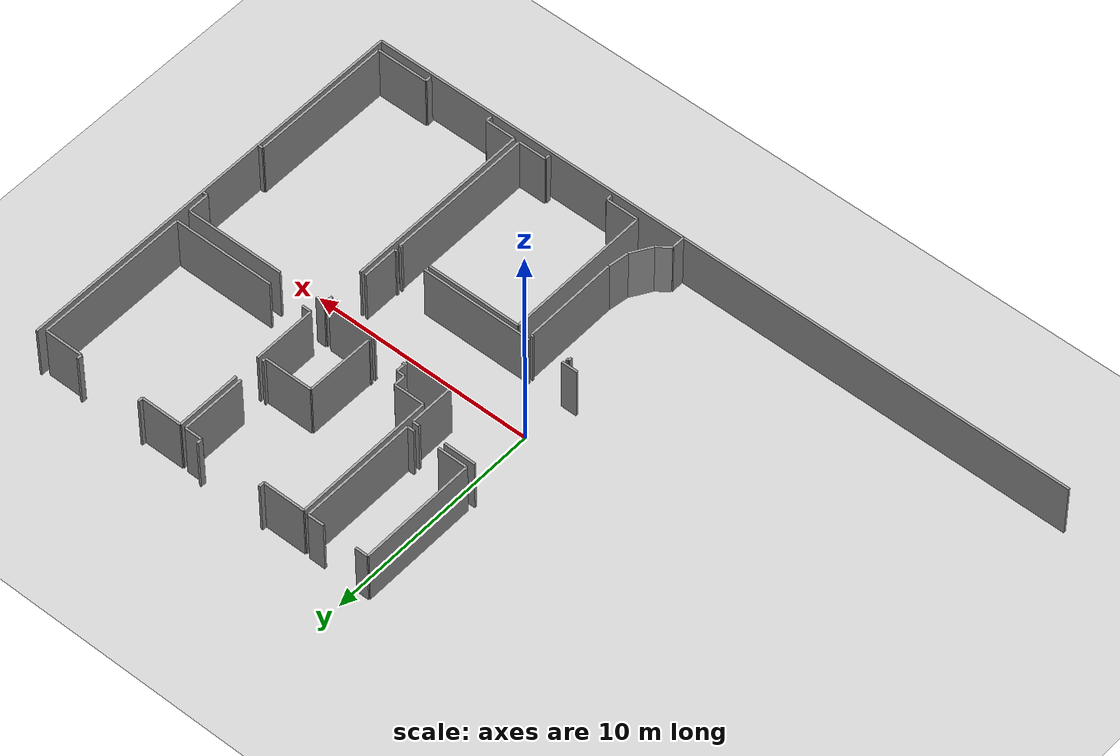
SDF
<sdf version="1.6">
 <world name="default">
  <model name="ground_plane">
   <static>1</static>
   <link name="link">
    <collision name="collision">
     <geometry><plane><normal>0 0 1</normal><size>100 100</size></plane></geometry>
     <surface><friction><ode><mu>100</mu><mu2>50</mu2></ode></friction></surface>
    </collision>
    <visual name="visual">
     <cast_shadows>0</cast_shadows>
     <geometry><plane><normal>0 0 1</normal><size>100 100</size></plane></geometry>
     <material>
      <script><uri>file://media/materials/scripts/gazebo.material</uri><name>Gazebo/Grey</name></script>
     </material>
    </visual>
   </link>
  </model>
  <model name="0510034861_A-40">
   <static>1</static>
   <link name="Wall_67">
    <collision name="Wall_67_Collision">
     <geometry><box><size>0.157635217891 0.1 2.5</size></box></geometry>
     <pose>0.0788176089454 0 1.25 0 0 0</pose>
    </collision>
    <visual name="Wall_67_Visual">
     <pose>0.0788176089454 0 1.25 0 0 0</pose>
     <geometry><box><size>0.157635217891 0.1 2.5</size></box></geometry>
     <material>
      <script><uri>file://media/materials/scripts/gazebo.material</uri><name>Gazebo/Grey</name></script>
      <ambient>1 1 1 1</ambient>
     </material>
    </visual>
    <pose>17.2040690701 -11.6845518756 0 0 0 1.57079632679</pose>
   </link>
   <link name="Wall_68">
    <collision name="Wall_68_Collision">
     <geometry><box><size>0.107882395497 0.1 2.5</size></box></geometry>
     <pose>0.0539411977484 0 1.25 0 0 0</pose>
    </collision>
    <visual name="Wall_68_Visual">
     <pose>0.0539411977484 0 1.25 0 0 0</pose>
     <geometry><box><size>0.107882395497 0.1 2.5</size></box></geometry>
     <material>
      <script><uri>file://media/materials/scripts/gazebo.material</uri><name>Gazebo/Grey</name></script>
      <ambient>1 1 1 1</ambient>
     </material>
    </visual>
    <pose>17.2040690701 -11.5269166577 0 0 0 0.0</pose>
   </link>
   <link name="Wall_69">
    <collision name="Wall_69_Collision">
     <geometry><box><size>0.116766828067 0.1 2.5</size></box></geometry>
     <pose>0.0583834140336 0 1.25 0 0 0</pose>
    </collision>
    <visual name="Wall_69_Visual">
     <pose>0.0583834140336 0 1.25 0 0 0</pose>
     <geometry><box><size>0.116766828067 0.1 2.5</size></box></geometry>
     <material>
      <script><uri>file://media/materials/scripts/gazebo.material</uri><name>Gazebo/Grey</name></script>
      <ambient>1 1 1 1</ambient>
     </material>
    </visual>
    <pose>18.877261564 -11.5269166577 0 0 0 0.0</pose>
   </link>
   <link name="Wall_70">
    <collision name="Wall_70_Collision">
     <geometry><box><size>4.31377277429 0.1 2.5</size></box></geometry>
     <pose>2.15688638715 0 1.25 0 0 0</pose>
    </collision>
    <visual name="Wall_70_Visual">
     <pose>2.15688638715 0 1.25 0 0 0</pose>
     <geometry><box><size>4.31377277429 0.1 2.5</size></box></geometry>
     <material>
      <script><uri>file://media/materials/scripts/gazebo.material</uri><name>Gazebo/Grey</name></script>
      <ambient>1 1 1 1</ambient>
     </material>
    </visual>
    <pose>18.9940283921 -11.5269166577 0 0 0 -1.57079632679</pose>
   </link>
   <link name="Wall_71">
    <collision name="Wall_71_Collision">
     <geometry><box><size>0.931246392023 0.1 2.5</size></box></geometry>
     <pose>0.465623196012 0 1.25 0 0 0</pose>
    </collision>
    <visual name="Wall_71_Visual">
     <pose>0.465623196012 0 1.25 0 0 0</pose>
     <geometry><box><size>0.931246392023 0.1 2.5</size></box></geometry>
     <material>
      <script><uri>file://media/materials/scripts/gazebo.material</uri><name>Gazebo/Grey</name></script>
      <ambient>1 1 1 1</ambient>
     </material>
    </visual>
    <pose>18.9940283921 -15.840689432 0 0 0 -1.71508341578</pose>
   </link>
   <link name="Wall_72">
    <collision name="Wall_72_Collision">
     <geometry><box><size>1.0292309526 0.1 2.5</size></box></geometry>
     <pose>0.514615476301 0 1.25 0 0 0</pose>
    </collision>
    <visual name="Wall_72_Visual">
     <pose>0.514615476301 0 1.25 0 0 0</pose>
     <geometry><box><size>1.0292309526 0.1 2.5</size></box></geometry>
     <material>
      <script><uri>file://media/materials/scripts/gazebo.material</uri><name>Gazebo/Grey</name></script>
      <ambient>1 1 1 1</ambient>
     </material>
    </visual>
    <pose>18.8601273012 -16.7622589304 0 0 0 -2.1196964731</pose>
   </link>
   <link name="Wall_73">
    <collision name="Wall_73_Collision">
     <geometry><box><size>0.661866314388 0.1 2.5</size></box></geometry>
     <pose>0.330933157194 0 1.25 0 0 0</pose>
    </collision>
    <visual name="Wall_73_Visual">
     <pose>0.330933157194 0 1.25 0 0 0</pose>
     <geometry><box><size>0.661866314388 0.1 2.5</size></box></geometry>
     <material>
      <script><uri>file://media/materials/scripts/gazebo.material</uri><name>Gazebo/Grey</name></script>
      <ambient>1 1 1 1</ambient>
     </material>
    </visual>
    <pose>18.3231268126 -17.6402947093 0 0 0 -2.48044857317</pose>
   </link>
   <link name="Wall_74">
    <collision name="Wall_74_Collision">
     <geometry><box><size>0.608211821842 0.1 2.5</size></box></geometry>
     <pose>0.304105910921 0 1.25 0 0 0</pose>
    </collision>
    <visual name="Wall_74_Visual">
     <pose>0.304105910921 0 1.25 0 0 0</pose>
     <geometry><box><size>0.608211821842 0.1 2.5</size></box></geometry>
     <material>
      <script><uri>file://media/materials/scripts/gazebo.material</uri><name>Gazebo/Grey</name></script>
      <ambient>1 1 1 1</ambient>
     </material>
    </visual>
    <pose>17.8007221774 -18.0466940392 0 0 0 -1.57622198307</pose>
   </link>
   <link name="Wall_75">
    <collision name="Wall_75_Collision">
     <geometry><box><size>1.27085461895 0.1 2.5</size></box></geometry>
     <pose>0.635427309477 0 1.25 0 0 0</pose>
    </collision>
    <visual name="Wall_75_Visual">
     <pose>0.635427309477 0 1.25 0 0 0</pose>
     <geometry><box><size>1.27085461895 0.1 2.5</size></box></geometry>
     <material>
      <script><uri>file://media/materials/scripts/gazebo.material</uri><name>Gazebo/Grey</name></script>
      <ambient>1 1 1 1</ambient>
     </material>
    </visual>
    <pose>25.3839661376 -18.2393593055 0 0 0 3.14159265359</pose>
   </link>
   <link name="Wall_76">
    <collision name="Wall_76_Collision">
     <geometry><box><size>0.237341270093 0.1 2.5</size></box></geometry>
     <pose>0.118670635047 0 1.25 0 0 0</pose>
    </collision>
    <visual name="Wall_76_Visual">
     <pose>0.118670635047 0 1.25 0 0 0</pose>
     <geometry><box><size>0.237341270093 0.1 2.5</size></box></geometry>
     <material>
      <script><uri>file://media/materials/scripts/gazebo.material</uri><name>Gazebo/Grey</name></script>
      <ambient>1 1 1 1</ambient>
     </material>
    </visual>
    <pose>24.1131115187 -18.2393593055 0 0 0 -1.57079632679</pose>
   </link>
   <link name="Wall_77">
    <collision name="Wall_77_Collision">
     <geometry><box><size>0.246098782198 0.1 2.5</size></box></geometry>
     <pose>0.123049391099 0 1.25 0 0 0</pose>
    </collision>
    <visual name="Wall_77_Visual">
     <pose>0.123049391099 0 1.25 0 0 0</pose>
     <geometry><box><size>0.246098782198 0.1 2.5</size></box></geometry>
     <material>
      <script><uri>file://media/materials/scripts/gazebo.material</uri><name>Gazebo/Grey</name></script>
      <ambient>1 1 1 1</ambient>
     </material>
    </visual>
    <pose>21.1157578104 -18.4767005756 0 0 0 1.57079632679</pose>
   </link>
   <link name="Wall_78">
    <collision name="Wall_78_Collision">
     <geometry><box><size>1.47024666992 0.1 2.5</size></box></geometry>
     <pose>0.735123334962 0 1.25 0 0 0</pose>
    </collision>
    <visual name="Wall_78_Visual">
     <pose>0.735123334962 0 1.25 0 0 0</pose>
     <geometry><box><size>1.47024666992 0.1 2.5</size></box></geometry>
     <material>
      <script><uri>file://media/materials/scripts/gazebo.material</uri><name>Gazebo/Grey</name></script>
      <ambient>1 1 1 1</ambient>
     </material>
    </visual>
    <pose>21.1157578104 -18.2306017934 0 0 0 3.14159265359</pose>
   </link>
   <link name="Wall_79">
    <collision name="Wall_79_Collision">
     <geometry><box><size>6.66383210961 0.1 2.5</size></box></geometry>
     <pose>3.3319160548 0 1.25 0 0 0</pose>
    </collision>
    <visual name="Wall_79_Visual">
     <pose>3.3319160548 0 1.25 0 0 0</pose>
     <geometry><box><size>6.66383210961 0.1 2.5</size></box></geometry>
     <material>
      <script><uri>file://media/materials/scripts/gazebo.material</uri><name>Gazebo/Grey</name></script>
      <ambient>1 1 1 1</ambient>
     </material>
    </visual>
    <pose>19.6455111404 -18.2306017934 0 0 0 1.57079632679</pose>
   </link>
   <link name="Wall_80">
    <collision name="Wall_80_Collision">
     <geometry><box><size>4.28420030588 0.1 2.5</size></box></geometry>
     <pose>2.14210015294 0 1.25 0 0 0</pose>
    </collision>
    <visual name="Wall_80_Visual">
     <pose>2.14210015294 0 1.25 0 0 0</pose>
     <geometry><box><size>4.28420030588 0.1 2.5</size></box></geometry>
     <material>
      <script><uri>file://media/materials/scripts/gazebo.material</uri><name>Gazebo/Grey</name></script>
      <ambient>1 1 1 1</ambient>
     </material>
    </visual>
    <pose>19.6455111404 -11.5667696838 0 0 0 0.0</pose>
   </link>
   <link name="Wall_81">
    <collision name="Wall_81_Collision">
     <geometry><box><size>0.113593816435 0.1 2.5</size></box></geometry>
     <pose>0.0567969082175 0 1.25 0 0 0</pose>
    </collision>
    <visual name="Wall_81_Visual">
     <pose>0.0567969082175 0 1.25 0 0 0</pose>
     <geometry><box><size>0.113593816435 0.1 2.5</size></box></geometry>
     <material>
      <script><uri>file://media/materials/scripts/gazebo.material</uri><name>Gazebo/Grey</name></script>
      <ambient>1 1 1 1</ambient>
     </material>
    </visual>
    <pose>25.2741799351 -11.5667696838 0 0 0 0.0</pose>
   </link>
   <link name="Wall_82">
    <collision name="Wall_82_Collision">
     <geometry><box><size>6.67259070809 0.1 2.5</size></box></geometry>
     <pose>3.33629535405 0 1.25 0 0 0</pose>
    </collision>
    <visual name="Wall_82_Visual">
     <pose>3.33629535405 0 1.25 0 0 0</pose>
     <geometry><box><size>6.67259070809 0.1 2.5</size></box></geometry>
     <material>
      <script><uri>file://media/materials/scripts/gazebo.material</uri><name>Gazebo/Grey</name></script>
      <ambient>1 1 1 1</ambient>
     </material>
    </visual>
    <pose>25.3877737516 -11.5667696838 0 0 0 -1.57136696185</pose>
   </link>
   <link name="Wall_83">
    <collision name="Wall_83_Collision">
     <geometry><box><size>2.37049353023 0.1 2.5</size></box></geometry>
     <pose>1.18524676511 0 1.25 0 0 0</pose>
    </collision>
    <visual name="Wall_83_Visual">
     <pose>1.18524676511 0 1.25 0 0 0</pose>
     <geometry><box><size>2.37049353023 0.1 2.5</size></box></geometry>
     <material>
      <script><uri>file://media/materials/scripts/gazebo.material</uri><name>Gazebo/Grey</name></script>
      <ambient>1 1 1 1</ambient>
     </material>
    </visual>
    <pose>32.3898489012 -18.2393593055 0 0 0 3.14159265359</pose>
   </link>
   <link name="Wall_84">
    <collision name="Wall_84_Collision">
     <geometry><box><size>0.264502249665 0.1 2.5</size></box></geometry>
     <pose>0.132251124833 0 1.25 0 0 0</pose>
    </collision>
    <visual name="Wall_84_Visual">
     <pose>0.132251124833 0 1.25 0 0 0</pose>
     <geometry><box><size>0.264502249665 0.1 2.5</size></box></geometry>
     <material>
      <script><uri>file://media/materials/scripts/gazebo.material</uri><name>Gazebo/Grey</name></script>
      <ambient>1 1 1 1</ambient>
     </material>
    </visual>
    <pose>30.019355371 -18.2393593055 0 0 0 -1.57079632679</pose>
   </link>
   <link name="Wall_85">
    <collision name="Wall_85_Collision">
     <geometry><box><size>0.259171590123 0.1 2.5</size></box></geometry>
     <pose>0.129585795062 0 1.25 0 0 0</pose>
    </collision>
    <visual name="Wall_85_Visual">
     <pose>0.129585795062 0 1.25 0 0 0</pose>
     <geometry><box><size>0.259171590123 0.1 2.5</size></box></geometry>
     <material>
      <script><uri>file://media/materials/scripts/gazebo.material</uri><name>Gazebo/Grey</name></script>
      <ambient>1 1 1 1</ambient>
     </material>
    </visual>
    <pose>27.0037251157 -18.5038615552 0 0 0 1.57079632679</pose>
   </link>
   <link name="Wall_86">
    <collision name="Wall_86_Collision">
     <geometry><box><size>1.36629880885 0.1 2.5</size></box></geometry>
     <pose>0.683149404426 0 1.25 0 0 0</pose>
    </collision>
    <visual name="Wall_86_Visual">
     <pose>0.683149404426 0 1.25 0 0 0</pose>
     <geometry><box><size>1.36629880885 0.1 2.5</size></box></geometry>
     <material>
      <script><uri>file://media/materials/scripts/gazebo.material</uri><name>Gazebo/Grey</name></script>
      <ambient>1 1 1 1</ambient>
     </material>
    </visual>
    <pose>27.0037251157 -18.244689965 0 0 0 3.14159265359</pose>
   </link>
   <link name="Wall_87">
    <collision name="Wall_87_Collision">
     <geometry><box><size>8.52867450612 0.1 2.5</size></box></geometry>
     <pose>4.26433725306 0 1.25 0 0 0</pose>
    </collision>
    <visual name="Wall_87_Visual">
     <pose>4.26433725306 0 1.25 0 0 0</pose>
     <geometry><box><size>8.52867450612 0.1 2.5</size></box></geometry>
     <material>
      <script><uri>file://media/materials/scripts/gazebo.material</uri><name>Gazebo/Grey</name></script>
      <ambient>1 1 1 1</ambient>
     </material>
    </visual>
    <pose>25.6374263068 -18.244689965 0 0 0 1.57079632679</pose>
   </link>
   <link name="Wall_88">
    <collision name="Wall_88_Collision">
     <geometry><box><size>0.385203612156 0.1 2.5</size></box></geometry>
     <pose>0.192601806078 0 1.25 0 0 0</pose>
    </collision>
    <visual name="Wall_88_Visual">
     <pose>0.192601806078 0 1.25 0 0 0</pose>
     <geometry><box><size>0.385203612156 0.1 2.5</size></box></geometry>
     <material>
      <script><uri>file://media/materials/scripts/gazebo.material</uri><name>Gazebo/Grey</name></script>
      <ambient>1 1 1 1</ambient>
     </material>
    </visual>
    <pose>25.6374263068 -8.17215491912 0 0 0 1.57079632679</pose>
   </link>
   <link name="Wall_89">
    <collision name="Wall_89_Collision">
     <geometry><box><size>0.418202933132 0.1 2.5</size></box></geometry>
     <pose>0.209101466566 0 1.25 0 0 0</pose>
    </collision>
    <visual name="Wall_89_Visual">
     <pose>0.209101466566 0 1.25 0 0 0</pose>
     <geometry><box><size>0.418202933132 0.1 2.5</size></box></geometry>
     <material>
      <script><uri>file://media/materials/scripts/gazebo.material</uri><name>Gazebo/Grey</name></script>
      <ambient>1 1 1 1</ambient>
     </material>
    </visual>
    <pose>25.6374263068 -7.78695130696 0 0 0 0.0</pose>
   </link>
   <link name="Wall_90">
    <collision name="Wall_90_Collision">
     <geometry><box><size>4.53296441785 0.1 2.5</size></box></geometry>
     <pose>2.26648220892 0 1.25 0 0 0</pose>
    </collision>
    <visual name="Wall_90_Visual">
     <pose>2.26648220892 0 1.25 0 0 0</pose>
     <geometry><box><size>4.53296441785 0.1 2.5</size></box></geometry>
     <material>
      <script><uri>file://media/materials/scripts/gazebo.material</uri><name>Gazebo/Grey</name></script>
      <ambient>1 1 1 1</ambient>
     </material>
    </visual>
    <pose>27.8316273107 -7.78695130696 0 0 0 0.0</pose>
   </link>
   <link name="Wall_91">
    <collision name="Wall_91_Collision">
     <geometry><box><size>0.984902810654 0.1 2.5</size></box></geometry>
     <pose>0.492451405327 0 1.25 0 0 0</pose>
    </collision>
    <visual name="Wall_91_Visual">
     <pose>0.492451405327 0 1.25 0 0 0</pose>
     <geometry><box><size>0.984902810654 0.1 2.5</size></box></geometry>
     <material>
      <script><uri>file://media/materials/scripts/gazebo.material</uri><name>Gazebo/Grey</name></script>
      <ambient>1 1 1 1</ambient>
     </material>
    </visual>
    <pose>32.3645917286 -7.78695130696 0 0 0 -1.57079632679</pose>
   </link>
   <link name="Wall_92">
    <collision name="Wall_92_Collision">
     <geometry><box><size>0.257394703609 0.1 2.5</size></box></geometry>
     <pose>0.128697351804 0 1.25 0 0 0</pose>
    </collision>
    <visual name="Wall_92_Visual">
     <pose>0.128697351804 0 1.25 0 0 0</pose>
     <geometry><box><size>0.257394703609 0.1 2.5</size></box></geometry>
     <material>
      <script><uri>file://media/materials/scripts/gazebo.material</uri><name>Gazebo/Grey</name></script>
      <ambient>1 1 1 1</ambient>
     </material>
    </visual>
    <pose>32.3645917286 -8.77185411762 0 0 0 0.0</pose>
   </link>
   <link name="Wall_93">
    <collision name="Wall_93_Collision">
     <geometry><box><size>0.236198985905 0.1 2.5</size></box></geometry>
     <pose>0.118099492953 0 1.25 0 0 0</pose>
    </collision>
    <visual name="Wall_93_Visual">
     <pose>0.118099492953 0 1.25 0 0 0</pose>
     <geometry><box><size>0.236198985905 0.1 2.5</size></box></geometry>
     <material>
      <script><uri>file://media/materials/scripts/gazebo.material</uri><name>Gazebo/Grey</name></script>
      <ambient>1 1 1 1</ambient>
     </material>
    </visual>
    <pose>32.6219864322 -11.8005571808 0 0 0 3.14159265359</pose>
   </link>
   <link name="Wall_94">
    <collision name="Wall_94_Collision">
     <geometry><box><size>6.43880340559 0.1 2.5</size></box></geometry>
     <pose>3.21940170279 0 1.25 0 0 0</pose>
    </collision>
    <visual name="Wall_94_Visual">
     <pose>3.21940170279 0 1.25 0 0 0</pose>
     <geometry><box><size>6.43880340559 0.1 2.5</size></box></geometry>
     <material>
      <script><uri>file://media/materials/scripts/gazebo.material</uri><name>Gazebo/Grey</name></script>
      <ambient>1 1 1 1</ambient>
     </material>
    </visual>
    <pose>32.3857874463 -11.8005571808 0 0 0 -1.57016554885</pose>
   </link>
   <link name="Wall_95">
    <collision name="Wall_95_Collision">
     <geometry><box><size>4.62320486867 0.1 2.5</size></box></geometry>
     <pose>2.31160243433 0 1.25 0 0 0</pose>
    </collision>
    <visual name="Wall_95_Visual">
     <pose>2.31160243433 0 1.25 0 0 0</pose>
     <geometry><box><size>4.62320486867 0.1 2.5</size></box></geometry>
     <material>
      <script><uri>file://media/materials/scripts/gazebo.material</uri><name>Gazebo/Grey</name></script>
      <ambient>1 1 1 1</ambient>
     </material>
    </visual>
    <pose>32.363068683 -7.14562219585 0 0 0 3.14159265359</pose>
   </link>
   <link name="Wall_96">
    <collision name="Wall_96_Collision">
     <geometry><box><size>0.417314489875 0.1 2.5</size></box></geometry>
     <pose>0.208657244937 0 1.25 0 0 0</pose>
    </collision>
    <visual name="Wall_96_Visual">
     <pose>0.208657244937 0 1.25 0 0 0</pose>
     <geometry><box><size>0.417314489875 0.1 2.5</size></box></geometry>
     <material>
      <script><uri>file://media/materials/scripts/gazebo.material</uri><name>Gazebo/Grey</name></script>
      <ambient>1 1 1 1</ambient>
     </material>
    </visual>
    <pose>26.1626231922 -7.14562219585 0 0 0 3.14159265359</pose>
   </link>
   <link name="Wall_97">
    <collision name="Wall_97_Collision">
     <geometry><box><size>2.84568375228 0.1 2.5</size></box></geometry>
     <pose>1.42284187614 0 1.25 0 0 0</pose>
    </collision>
    <visual name="Wall_97_Visual">
     <pose>1.42284187614 0 1.25 0 0 0</pose>
     <geometry><box><size>2.84568375228 0.1 2.5</size></box></geometry>
     <material>
      <script><uri>file://media/materials/scripts/gazebo.material</uri><name>Gazebo/Grey</name></script>
      <ambient>1 1 1 1</ambient>
     </material>
    </visual>
    <pose>25.7453087023 -7.14562219585 0 0 0 1.57079632679</pose>
   </link>
   <link name="Wall_98">
    <collision name="Wall_98_Collision">
     <geometry><box><size>2.91904378121 0.1 2.5</size></box></geometry>
     <pose>1.45952189061 0 1.25 0 0 0</pose>
    </collision>
    <visual name="Wall_98_Visual">
     <pose>1.45952189061 0 1.25 0 0 0</pose>
     <geometry><box><size>2.91904378121 0.1 2.5</size></box></geometry>
     <material>
      <script><uri>file://media/materials/scripts/gazebo.material</uri><name>Gazebo/Grey</name></script>
      <ambient>1 1 1 1</ambient>
     </material>
    </visual>
    <pose>25.7453087023 -3.16501564295 0 0 0 1.57079632679</pose>
   </link>
   <link name="Wall_99">
    <collision name="Wall_99_Collision">
     <geometry><box><size>1.86649236256 0.1 2.5</size></box></geometry>
     <pose>0.933246181281 0 1.25 0 0 0</pose>
    </collision>
    <visual name="Wall_99_Visual">
     <pose>0.933246181281 0 1.25 0 0 0</pose>
     <geometry><box><size>1.86649236256 0.1 2.5</size></box></geometry>
     <material>
      <script><uri>file://media/materials/scripts/gazebo.material</uri><name>Gazebo/Grey</name></script>
      <ambient>1 1 1 1</ambient>
     </material>
    </visual>
    <pose>25.7453087023 -0.245971861733 0 0 0 0.0</pose>
   </link>
   <link name="Wall_100">
    <collision name="Wall_100_Collision">
     <geometry><box><size>0.212591779361 0.1 2.5</size></box></geometry>
     <pose>0.106295889681 0 1.25 0 0 0</pose>
    </collision>
    <visual name="Wall_100_Visual">
     <pose>0.106295889681 0 1.25 0 0 0</pose>
     <geometry><box><size>0.212591779361 0.1 2.5</size></box></geometry>
     <material>
      <script><uri>file://media/materials/scripts/gazebo.material</uri><name>Gazebo/Grey</name></script>
      <ambient>1 1 1 1</ambient>
     </material>
    </visual>
    <pose>27.6118010649 -0.245971861733 0 0 0 1.57079632679</pose>
   </link>
   <link name="Wall_101">
    <collision name="Wall_101_Collision">
     <geometry><box><size>0.214749427271 0.1 2.5</size></box></geometry>
     <pose>0.107374713636 0 1.25 0 0 0</pose>
    </collision>
    <visual name="Wall_101_Visual">
     <pose>0.107374713636 0 1.25 0 0 0</pose>
     <geometry><box><size>0.214749427271 0.1 2.5</size></box></geometry>
     <material>
      <script><uri>file://media/materials/scripts/gazebo.material</uri><name>Gazebo/Grey</name></script>
      <ambient>1 1 1 1</ambient>
     </material>
    </visual>
    <pose>30.6171507625 -0.0333800823714 0 0 0 -1.57079632679</pose>
   </link>
   <link name="Wall_102">
    <collision name="Wall_102_Collision">
     <geometry><box><size>1.75112165961 0.1 2.5</size></box></geometry>
     <pose>0.875560829806 0 1.25 0 0 0</pose>
    </collision>
    <visual name="Wall_102_Visual">
     <pose>0.875560829806 0 1.25 0 0 0</pose>
     <geometry><box><size>1.75112165961 0.1 2.5</size></box></geometry>
     <material>
      <script><uri>file://media/materials/scripts/gazebo.material</uri><name>Gazebo/Grey</name></script>
      <ambient>1 1 1 1</ambient>
     </material>
    </visual>
    <pose>30.6171507625 -0.248129509643 0 0 0 0.0</pose>
   </link>
   <link name="Wall_103">
    <collision name="Wall_103_Collision">
     <geometry><box><size>6.89749464916 0.1 2.5</size></box></geometry>
     <pose>3.44874732458 0 1.25 0 0 0</pose>
    </collision>
    <visual name="Wall_103_Visual">
     <pose>3.44874732458 0 1.25 0 0 0</pose>
     <geometry><box><size>6.89749464916 0.1 2.5</size></box></geometry>
     <material>
      <script><uri>file://media/materials/scripts/gazebo.material</uri><name>Gazebo/Grey</name></script>
      <ambient>1 1 1 1</ambient>
     </material>
    </visual>
    <pose>32.3682724221 -0.248129509643 0 0 0 -1.57155076588</pose>
   </link>
   <link name="Wall_104">
    <collision name="Wall_104_Collision">
     <geometry><box><size>0.094809587572 0.1 2.5</size></box></geometry>
     <pose>0.047404793786 0 1.25 0 0 0</pose>
    </collision>
    <visual name="Wall_104_Visual">
     <pose>0.047404793786 0 1.25 0 0 0</pose>
     <geometry><box><size>0.094809587572 0.1 2.5</size></box></geometry>
     <material>
      <script><uri>file://media/materials/scripts/gazebo.material</uri><name>Gazebo/Grey</name></script>
      <ambient>1 1 1 1</ambient>
     </material>
    </visual>
    <pose>23.2794979026 -7.53894871779 0 0 0 3.14159265359</pose>
   </link>
   <link name="Wall_105">
    <collision name="Wall_105_Collision">
     <geometry><box><size>0.10724779317 0.1 2.5</size></box></geometry>
     <pose>0.0536238965852 0 1.25 0 0 0</pose>
    </collision>
    <visual name="Wall_105_Visual">
     <pose>0.0536238965852 0 1.25 0 0 0</pose>
     <geometry><box><size>0.10724779317 0.1 2.5</size></box></geometry>
     <material>
      <script><uri>file://media/materials/scripts/gazebo.material</uri><name>Gazebo/Grey</name></script>
      <ambient>1 1 1 1</ambient>
     </material>
    </visual>
    <pose>21.6521236967 -7.53894871779 0 0 0 3.14159265359</pose>
   </link>
   <link name="Wall_106">
    <collision name="Wall_106_Collision">
     <geometry><box><size>0.407922375443 0.1 2.5</size></box></geometry>
     <pose>0.203961187722 0 1.25 0 0 0</pose>
    </collision>
    <visual name="Wall_106_Visual">
     <pose>0.203961187722 0 1.25 0 0 0</pose>
     <geometry><box><size>0.407922375443 0.1 2.5</size></box></geometry>
     <material>
      <script><uri>file://media/materials/scripts/gazebo.material</uri><name>Gazebo/Grey</name></script>
      <ambient>1 1 1 1</ambient>
     </material>
    </visual>
    <pose>21.5448759035 -7.53894871779 0 0 0 1.57079632679</pose>
   </link>
   <link name="Wall_107">
    <collision name="Wall_107_Collision">
     <geometry><box><size>0.366038621898 0.1 2.5</size></box></geometry>
     <pose>0.183019310949 0 1.25 0 0 0</pose>
    </collision>
    <visual name="Wall_107_Visual">
     <pose>0.183019310949 0 1.25 0 0 0</pose>
     <geometry><box><size>0.366038621898 0.1 2.5</size></box></geometry>
     <material>
      <script><uri>file://media/materials/scripts/gazebo.material</uri><name>Gazebo/Grey</name></script>
      <ambient>1 1 1 1</ambient>
     </material>
    </visual>
    <pose>21.5448759035 -7.13102634234 0 0 0 3.14159265359</pose>
   </link>
   <link name="Wall_108">
    <collision name="Wall_108_Collision">
     <geometry><box><size>0.523673839788 0.1 2.5</size></box></geometry>
     <pose>0.261836919894 0 1.25 0 0 0</pose>
    </collision>
    <visual name="Wall_108_Visual">
     <pose>0.261836919894 0 1.25 0 0 0</pose>
     <geometry><box><size>0.523673839788 0.1 2.5</size></box></geometry>
     <material>
      <script><uri>file://media/materials/scripts/gazebo.material</uri><name>Gazebo/Grey</name></script>
      <ambient>1 1 1 1</ambient>
     </material>
    </visual>
    <pose>21.1788372816 -7.13102634234 0 0 0 1.57079632679</pose>
   </link>
   <link name="Wall_109">
    <collision name="Wall_109_Collision">
     <geometry><box><size>1.36934490002 0.1 2.5</size></box></geometry>
     <pose>0.684672450009 0 1.25 0 0 0</pose>
    </collision>
    <visual name="Wall_109_Visual">
     <pose>0.684672450009 0 1.25 0 0 0</pose>
     <geometry><box><size>1.36934490002 0.1 2.5</size></box></geometry>
     <material>
      <script><uri>file://media/materials/scripts/gazebo.material</uri><name>Gazebo/Grey</name></script>
      <ambient>1 1 1 1</ambient>
     </material>
    </visual>
    <pose>21.1788372816 -6.60735250255 0 0 0 3.14159265359</pose>
   </link>
   <link name="Wall_110">
    <collision name="Wall_110_Collision">
     <geometry><box><size>6.34183488917 0.1 2.5</size></box></geometry>
     <pose>3.17091744458 0 1.25 0 0 0</pose>
    </collision>
    <visual name="Wall_110_Visual">
     <pose>3.17091744458 0 1.25 0 0 0</pose>
     <geometry><box><size>6.34183488917 0.1 2.5</size></box></geometry>
     <material>
      <script><uri>file://media/materials/scripts/gazebo.material</uri><name>Gazebo/Grey</name></script>
      <ambient>1 1 1 1</ambient>
     </material>
    </visual>
    <pose>19.8094923816 -6.60735250255 0 0 0 1.57079632679</pose>
   </link>
   <link name="Wall_111">
    <collision name="Wall_111_Collision">
     <geometry><box><size>1.91840283286 0.1 2.5</size></box></geometry>
     <pose>0.959201416432 0 1.25 0 0 0</pose>
    </collision>
    <visual name="Wall_111_Visual">
     <pose>0.959201416432 0 1.25 0 0 0</pose>
     <geometry><box><size>1.91840283286 0.1 2.5</size></box></geometry>
     <material>
      <script><uri>file://media/materials/scripts/gazebo.material</uri><name>Gazebo/Grey</name></script>
      <ambient>1 1 1 1</ambient>
     </material>
    </visual>
    <pose>19.8094923816 -0.265517613388 0 0 0 0.0</pose>
   </link>
   <link name="Wall_112">
    <collision name="Wall_112_Collision">
     <geometry><box><size>0.246098782198 0.1 2.5</size></box></geometry>
     <pose>0.123049391099 0 1.25 0 0 0</pose>
    </collision>
    <visual name="Wall_112_Visual">
     <pose>0.123049391099 0 1.25 0 0 0</pose>
     <geometry><box><size>0.246098782198 0.1 2.5</size></box></geometry>
     <material>
      <script><uri>file://media/materials/scripts/gazebo.material</uri><name>Gazebo/Grey</name></script>
      <ambient>1 1 1 1</ambient>
     </material>
    </visual>
    <pose>21.7278952145 -0.265517613388 0 0 0 1.57079632679</pose>
   </link>
   <link name="Wall_113">
    <collision name="Wall_113_Collision">
     <geometry><box><size>0.232899053808 0.1 2.5</size></box></geometry>
     <pose>0.116449526904 0 1.25 0 0 0</pose>
    </collision>
    <visual name="Wall_113_Visual">
     <pose>0.116449526904 0 1.25 0 0 0</pose>
     <geometry><box><size>0.232899053808 0.1 2.5</size></box></geometry>
     <material>
      <script><uri>file://media/materials/scripts/gazebo.material</uri><name>Gazebo/Grey</name></script>
      <ambient>1 1 1 1</ambient>
     </material>
    </visual>
    <pose>24.7134453195 -0.0194188311894 0 0 0 -1.57079632679</pose>
   </link>
   <link name="Wall_114">
    <collision name="Wall_114_Collision">
     <geometry><box><size>0.790587578294 0.1 2.5</size></box></geometry>
     <pose>0.395293789147 0 1.25 0 0 0</pose>
    </collision>
    <visual name="Wall_114_Visual">
     <pose>0.395293789147 0 1.25 0 0 0</pose>
     <geometry><box><size>0.790587578294 0.1 2.5</size></box></geometry>
     <material>
      <script><uri>file://media/materials/scripts/gazebo.material</uri><name>Gazebo/Grey</name></script>
      <ambient>1 1 1 1</ambient>
     </material>
    </visual>
    <pose>24.7134453195 -0.252317884997 0 0 0 0.0</pose>
   </link>
   <link name="Wall_115">
    <collision name="Wall_115_Collision">
     <geometry><box><size>2.90178259794 0.1 2.5</size></box></geometry>
     <pose>1.45089129897 0 1.25 0 0 0</pose>
    </collision>
    <visual name="Wall_115_Visual">
     <pose>1.45089129897 0 1.25 0 0 0</pose>
     <geometry><box><size>2.90178259794 0.1 2.5</size></box></geometry>
     <material>
      <script><uri>file://media/materials/scripts/gazebo.material</uri><name>Gazebo/Grey</name></script>
      <ambient>1 1 1 1</ambient>
     </material>
    </visual>
    <pose>25.5040328978 -0.252317884997 0 0 0 -1.57079632679</pose>
   </link>
   <link name="Wall_116">
    <collision name="Wall_116_Collision">
     <geometry><box><size>0.170200343954 0.1 2.5</size></box></geometry>
     <pose>0.0851001719772 0 1.25 0 0 0</pose>
    </collision>
    <visual name="Wall_116_Visual">
     <pose>0.0851001719772 0 1.25 0 0 0</pose>
     <geometry><box><size>0.170200343954 0.1 2.5</size></box></geometry>
     <material>
      <script><uri>file://media/materials/scripts/gazebo.material</uri><name>Gazebo/Grey</name></script>
      <ambient>1 1 1 1</ambient>
     </material>
    </visual>
    <pose>25.5040328978 -4.30184225055 0 0 0 -1.57079632679</pose>
   </link>
   <link name="Wall_117">
    <collision name="Wall_117_Collision">
     <geometry><box><size>2.19191643557 0.1 2.5</size></box></geometry>
     <pose>1.09595821778 0 1.25 0 0 0</pose>
    </collision>
    <visual name="Wall_117_Visual">
     <pose>1.09595821778 0 1.25 0 0 0</pose>
     <geometry><box><size>2.19191643557 0.1 2.5</size></box></geometry>
     <material>
      <script><uri>file://media/materials/scripts/gazebo.material</uri><name>Gazebo/Grey</name></script>
      <ambient>1 1 1 1</ambient>
     </material>
    </visual>
    <pose>25.5040328978 -4.47204259451 0 0 0 3.14159265359</pose>
   </link>
   <link name="Wall_118">
    <collision name="Wall_118_Collision">
     <geometry><box><size>3.06707957827 0.1 2.5</size></box></geometry>
     <pose>1.53353978913 0 1.25 0 0 0</pose>
    </collision>
    <visual name="Wall_118_Visual">
     <pose>1.53353978913 0 1.25 0 0 0</pose>
     <geometry><box><size>3.06707957827 0.1 2.5</size></box></geometry>
     <material>
      <script><uri>file://media/materials/scripts/gazebo.material</uri><name>Gazebo/Grey</name></script>
      <ambient>1 1 1 1</ambient>
     </material>
    </visual>
    <pose>23.3121164622 -4.47204259451 0 0 0 -1.58143158215</pose>
   </link>
   <link name="Wall_119">
    <collision name="Wall_119_Collision">
     <geometry><box><size>0.324916391143 0.1 2.5</size></box></geometry>
     <pose>0.162458195572 0 1.25 0 0 0</pose>
    </collision>
    <visual name="Wall_119_Visual">
     <pose>0.162458195572 0 1.25 0 0 0</pose>
     <geometry><box><size>0.324916391143 0.1 2.5</size></box></geometry>
     <material>
      <script><uri>file://media/materials/scripts/gazebo.material</uri><name>Gazebo/Grey</name></script>
      <ambient>1 1 1 1</ambient>
     </material>
    </visual>
    <pose>19.5697396227 -5.4714143382 0 0 0 3.14159265359</pose>
   </link>
   <link name="Wall_120">
    <collision name="Wall_120_Collision">
     <geometry><box><size>1.32428813484 0.1 2.5</size></box></geometry>
     <pose>0.66214406742 0 1.25 0 0 0</pose>
    </collision>
    <visual name="Wall_120_Visual">
     <pose>0.66214406742 0 1.25 0 0 0</pose>
     <geometry><box><size>1.32428813484 0.1 2.5</size></box></geometry>
     <material>
      <script><uri>file://media/materials/scripts/gazebo.material</uri><name>Gazebo/Grey</name></script>
      <ambient>1 1 1 1</ambient>
     </material>
    </visual>
    <pose>18.085912463 -5.4714143382 0 0 0 3.14159265359</pose>
   </link>
   <link name="Wall_121">
    <collision name="Wall_121_Collision">
     <geometry><box><size>5.23737300021 0.1 2.5</size></box></geometry>
     <pose>2.6186865001 0 1.25 0 0 0</pose>
    </collision>
    <visual name="Wall_121_Visual">
     <pose>2.6186865001 0 1.25 0 0 0</pose>
     <geometry><box><size>5.23737300021 0.1 2.5</size></box></geometry>
     <material>
      <script><uri>file://media/materials/scripts/gazebo.material</uri><name>Gazebo/Grey</name></script>
      <ambient>1 1 1 1</ambient>
     </material>
    </visual>
    <pose>16.7616243281 -5.4714143382 0 0 0 1.57079632679</pose>
   </link>
   <link name="Wall_122">
    <collision name="Wall_122_Collision">
     <geometry><box><size>0.567969082175 0.1 2.5</size></box></geometry>
     <pose>0.283984541087 0 1.25 0 0 0</pose>
    </collision>
    <visual name="Wall_122_Visual">
     <pose>0.283984541087 0 1.25 0 0 0</pose>
     <geometry><box><size>0.567969082175 0.1 2.5</size></box></geometry>
     <material>
      <script><uri>file://media/materials/scripts/gazebo.material</uri><name>Gazebo/Grey</name></script>
      <ambient>1 1 1 1</ambient>
     </material>
    </visual>
    <pose>16.7616243281 -0.234041337996 0 0 0 0.0</pose>
   </link>
   <link name="Wall_123">
    <collision name="Wall_123_Collision">
     <geometry><box><size>0.739565551247 0.1 2.5</size></box></geometry>
     <pose>0.369782775624 0 1.25 0 0 0</pose>
    </collision>
    <visual name="Wall_123_Visual">
     <pose>0.369782775624 0 1.25 0 0 0</pose>
     <geometry><box><size>0.739565551247 0.1 2.5</size></box></geometry>
     <material>
      <script><uri>file://media/materials/scripts/gazebo.material</uri><name>Gazebo/Grey</name></script>
      <ambient>1 1 1 1</ambient>
     </material>
    </visual>
    <pose>18.8365200947 -0.234041337996 0 0 0 0.0</pose>
   </link>
   <link name="Wall_124">
    <collision name="Wall_124_Collision">
     <geometry><box><size>5.23737684488 0.1 2.5</size></box></geometry>
     <pose>2.61868842244 0 1.25 0 0 0</pose>
    </collision>
    <visual name="Wall_124_Visual">
     <pose>2.61868842244 0 1.25 0 0 0</pose>
     <geometry><box><size>5.23737684488 0.1 2.5</size></box></geometry>
     <material>
      <script><uri>file://media/materials/scripts/gazebo.material</uri><name>Gazebo/Grey</name></script>
      <ambient>1 1 1 1</ambient>
     </material>
    </visual>
    <pose>19.5760856459 -0.234041337996 0 0 0 -1.5720080068</pose>
   </link>
   <link name="Wall_125">
    <collision name="Wall_125_Collision">
     <geometry><box><size>0.119559078304 0.1 2.5</size></box></geometry>
     <pose>0.0597795391518 0 1.25 0 0 0</pose>
    </collision>
    <visual name="Wall_125_Visual">
     <pose>0.0597795391518 0 1.25 0 0 0</pose>
     <geometry><box><size>0.119559078304 0.1 2.5</size></box></geometry>
     <material>
      <script><uri>file://media/materials/scripts/gazebo.material</uri><name>Gazebo/Grey</name></script>
      <ambient>1 1 1 1</ambient>
     </material>
    </visual>
    <pose>25.4057964576 -11.3270169248 0 0 0 3.14159265359</pose>
   </link>
   <link name="Wall_126">
    <collision name="Wall_126_Collision">
     <geometry><box><size>5.05892282601 0.1 2.5</size></box></geometry>
     <pose>2.52946141301 0 1.25 0 0 0</pose>
    </collision>
    <visual name="Wall_126_Visual">
     <pose>2.52946141301 0 1.25 0 0 0</pose>
     <geometry><box><size>5.05892282601 0.1 2.5</size></box></geometry>
     <material>
      <script><uri>file://media/materials/scripts/gazebo.material</uri><name>Gazebo/Grey</name></script>
      <ambient>1 1 1 1</ambient>
     </material>
    </visual>
    <pose>23.9481149138 -11.3270169248 0 0 0 3.14159265359</pose>
   </link>
   <link name="Wall_127">
    <collision name="Wall_127_Collision">
     <geometry><box><size>0.713039174002 0.1 2.5</size></box></geometry>
     <pose>0.356519587001 0 1.25 0 0 0</pose>
    </collision>
    <visual name="Wall_127_Visual">
     <pose>0.356519587001 0 1.25 0 0 0</pose>
     <geometry><box><size>0.713039174002 0.1 2.5</size></box></geometry>
     <material>
      <script><uri>file://media/materials/scripts/gazebo.material</uri><name>Gazebo/Grey</name></script>
      <ambient>1 1 1 1</ambient>
     </material>
    </visual>
    <pose>17.3349240698 -11.3270169248 0 0 0 3.14159265359</pose>
   </link>
   <link name="Wall_129">
    <collision name="Wall_129_Collision">
     <geometry><box><size>1.44587794059 0.1 2.5</size></box></geometry>
     <pose>0.722938970294 0 1.25 0 0 0</pose>
    </collision>
    <visual name="Wall_129_Visual">
     <pose>0.722938970294 0 1.25 0 0 0</pose>
     <geometry><box><size>1.44587794059 0.1 2.5</size></box></geometry>
     <material>
      <script><uri>file://media/materials/scripts/gazebo.material</uri><name>Gazebo/Grey</name></script>
      <ambient>1 1 1 1</ambient>
     </material>
    </visual>
    <pose>16.6218848958 -5.76866206792 0 0 0 0.0</pose>
   </link>
   <link name="Wall_130">
    <collision name="Wall_130_Collision">
     <geometry><box><size>0.307147526003 0.1 2.5</size></box></geometry>
     <pose>0.153573763001 0 1.25 0 0 0</pose>
    </collision>
    <visual name="Wall_130_Visual">
     <pose>0.153573763001 0 1.25 0 0 0</pose>
     <geometry><box><size>0.307147526003 0.1 2.5</size></box></geometry>
     <material>
      <script><uri>file://media/materials/scripts/gazebo.material</uri><name>Gazebo/Grey</name></script>
      <ambient>1 1 1 1</ambient>
     </material>
    </visual>
    <pose>19.2610690511 -5.76866206792 0 0 0 0.0</pose>
   </link>
   <link name="Wall_131">
    <collision name="Wall_131_Collision">
     <geometry><box><size>2.0100394088 0.1 2.5</size></box></geometry>
     <pose>1.0050197044 0 1.25 0 0 0</pose>
    </collision>
    <visual name="Wall_131_Visual">
     <pose>1.0050197044 0 1.25 0 0 0</pose>
     <geometry><box><size>2.0100394088 0.1 2.5</size></box></geometry>
     <material>
      <script><uri>file://media/materials/scripts/gazebo.material</uri><name>Gazebo/Grey</name></script>
      <ambient>1 1 1 1</ambient>
     </material>
    </visual>
    <pose>19.5682165771 -5.76866206792 0 0 0 -1.57079632679</pose>
   </link>
   <link name="Wall_132">
    <collision name="Wall_132_Collision">
     <geometry><box><size>2.06398060655 0.1 2.5</size></box></geometry>
     <pose>1.03199030328 0 1.25 0 0 0</pose>
    </collision>
    <visual name="Wall_132_Visual">
     <pose>1.03199030328 0 1.25 0 0 0</pose>
     <geometry><box><size>2.06398060655 0.1 2.5</size></box></geometry>
     <material>
      <script><uri>file://media/materials/scripts/gazebo.material</uri><name>Gazebo/Grey</name></script>
      <ambient>1 1 1 1</ambient>
     </material>
    </visual>
    <pose>19.5682165771 -7.77870147672 0 0 0 0.0</pose>
   </link>
   <link name="Wall_133">
    <collision name="Wall_133_Collision">
     <geometry><box><size>2.20740073233 0.1 2.5</size></box></geometry>
     <pose>1.10370036617 0 1.25 0 0 0</pose>
    </collision>
    <visual name="Wall_133_Visual">
     <pose>1.10370036617 0 1.25 0 0 0</pose>
     <geometry><box><size>2.20740073233 0.1 2.5</size></box></geometry>
     <material>
      <script><uri>file://media/materials/scripts/gazebo.material</uri><name>Gazebo/Grey</name></script>
      <ambient>1 1 1 1</ambient>
     </material>
    </visual>
    <pose>23.195857316 -7.77870147672 0 0 0 0.0</pose>
   </link>
   <link name="Wall_134">
    <collision name="Wall_134_Collision">
     <geometry><box><size>0.383807487038 0.1 2.5</size></box></geometry>
     <pose>0.191903743519 0 1.25 0 0 0</pose>
    </collision>
    <visual name="Wall_134_Visual">
     <pose>0.191903743519 0 1.25 0 0 0</pose>
     <geometry><box><size>0.383807487038 0.1 2.5</size></box></geometry>
     <material>
      <script><uri>file://media/materials/scripts/gazebo.material</uri><name>Gazebo/Grey</name></script>
      <ambient>1 1 1 1</ambient>
     </material>
    </visual>
    <pose>25.4032580483 -7.77870147672 0 0 0 -1.57079632679</pose>
   </link>
   <link name="Wall_135">
    <collision name="Wall_135_Collision">
     <geometry><box><size>1.61938020614 0.1 2.5</size></box></geometry>
     <pose>0.809690103072 0 1.25 0 0 0</pose>
    </collision>
    <visual name="Wall_135_Visual">
     <pose>0.809690103072 0 1.25 0 0 0</pose>
     <geometry><box><size>1.61938020614 0.1 2.5</size></box></geometry>
     <material>
      <script><uri>file://media/materials/scripts/gazebo.material</uri><name>Gazebo/Grey</name></script>
      <ambient>1 1 1 1</ambient>
     </material>
    </visual>
    <pose>25.4032580483 -9.7076387082 0 0 0 -1.56922880711</pose>
   </link>
   <link name="Wall_136">
    <collision name="Wall_136_Collision">
     <geometry><box><size>18.6548969089 0.1 2.5</size></box></geometry>
     <pose>9.32744845443 0 1.25 0 0 0</pose>
    </collision>
    <visual name="Wall_136_Visual">
     <pose>9.32744845443 0 1.25 0 0 0</pose>
     <geometry><box><size>18.6548969089 0.1 2.5</size></box></geometry>
     <material>
      <script><uri>file://media/materials/scripts/gazebo.material</uri><name>Gazebo/Grey</name></script>
      <ambient>1 1 1 1</ambient>
     </material>
    </visual>
    <pose>32.6219864322 -18.6548969089 0 0 0 1.57079632679</pose>
   </link>
   <link name="Wall_137">
    <collision name="Wall_137_Collision">
     <geometry><box><size>32.6219864322 0.1 2.5</size></box></geometry>
     <pose>16.3109932161 0 1.25 0 0 0</pose>
    </collision>
    <visual name="Wall_137_Visual">
     <pose>16.3109932161 0 1.25 0 0 0</pose>
     <geometry><box><size>32.6219864322 0.1 2.5</size></box></geometry>
     <material>
      <script><uri>file://media/materials/scripts/gazebo.material</uri><name>Gazebo/Grey</name></script>
      <ambient>1 1 1 1</ambient>
     </material>
    </visual>
    <pose>32.6219864322 -18.6548969089 0 0 0 3.14159265359</pose>
   </link>
   <pose>-17.35 9.30489690885 0 0 0 0</pose>
  </model>
 </world>
</sdf>
